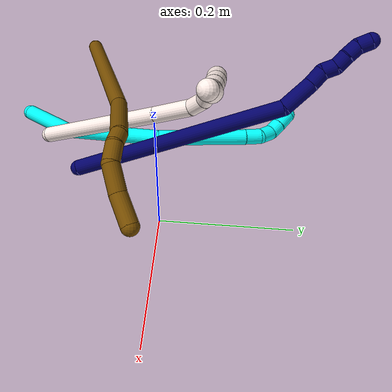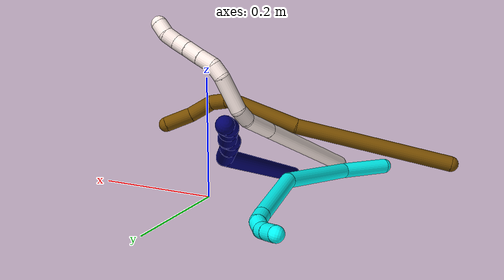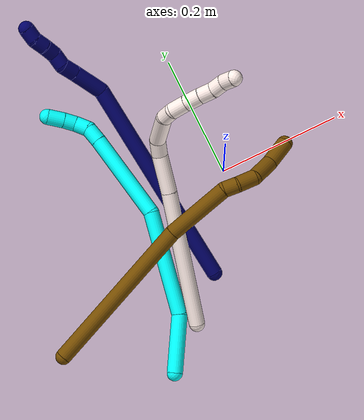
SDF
<sdf version="1.7">
 <world name="default">
  <model name="3">
   <static>0</static>
   <link name="3">
    <collision name="collision-cylinder-e_1_1_4">
     <pose>-0.004658 0.033006 0.032144 -0.798628 -0.10075 0.042545</pose>
     <geometry><cylinder><radius>0.0125</radius><length>0.092615</length></cylinder></geometry>
     <surface>
      <friction><ode><mu>1.16</mu><mu2>1.16</mu2><slip1>0</slip1><slip2>0</slip2></ode></friction>
      <contact><ode><kp>1e+06</kp><kd>1</kd><max_vel>0</max_vel><min_depth>0.001</min_depth></ode></contact>
     </surface>
    </collision>
    <visual name="visual-cylinder-e_1_1_4">
     <pose>-0.004658 0.033006 0.032144 -0.798628 -0.10075 0.042545</pose>
     <geometry><cylinder><radius>0.0125</radius><length>0.092615</length></cylinder></geometry>
     <material><ambient>0.003922 1 0.996078 1</ambient></material>
    </visual>
    <collision name="collision-cylinder-e_2_4_5">
     <pose>-0.034211 0.136971 0.100139 -1.10298 -0.30348 0.187582</pose>
     <geometry><cylinder><radius>0.0125</radius><length>0.166615</length></cylinder></geometry>
     <surface>
      <friction><ode><mu>1.16</mu><mu2>1.16</mu2><slip1>0</slip1><slip2>0</slip2></ode></friction>
      <contact><ode><kp>1e+06</kp><kd>1</kd><max_vel>0</max_vel><min_depth>0.001</min_depth></ode></contact>
     </surface>
    </collision>
    <visual name="visual-cylinder-e_2_4_5">
     <pose>-0.034211 0.136971 0.100139 -1.10298 -0.30348 0.187582</pose>
     <geometry><cylinder><radius>0.0125</radius><length>0.166615</length></cylinder></geometry>
     <material><ambient>0.003922 1 0.996078 1</ambient></material>
    </visual>
    <collision name="collision-cylinder-e_3_5_6">
     <pose>-0.074894 0.278238 0.14005 -1.5131 -0.220523 0.208245</pose>
     <geometry><cylinder><radius>0.0125</radius><length>0.144348</length></cylinder></geometry>
     <surface>
      <friction><ode><mu>1.16</mu><mu2>1.16</mu2><slip1>0</slip1><slip2>0</slip2></ode></friction>
      <contact><ode><kp>1e+06</kp><kd>1</kd><max_vel>0</max_vel><min_depth>0.001</min_depth></ode></contact>
     </surface>
    </collision>
    <visual name="visual-cylinder-e_3_5_6">
     <pose>-0.074894 0.278238 0.14005 -1.5131 -0.220523 0.208245</pose>
     <geometry><cylinder><radius>0.0125</radius><length>0.144348</length></cylinder></geometry>
     <material><ambient>0.003922 1 0.996078 1</ambient></material>
    </visual>
    <collision name="collision-cylinder-e_4_6_7">
     <pose>-0.093676 0.361264 0.144144 -1.56824 -0.231271 0.230686</pose>
     <geometry><cylinder><radius>0.0125</radius><length>0.026128</length></cylinder></geometry>
     <surface>
      <friction><ode><mu>1.16</mu><mu2>1.16</mu2><slip1>0</slip1><slip2>0</slip2></ode></friction>
      <contact><ode><kp>1e+06</kp><kd>1</kd><max_vel>0</max_vel><min_depth>0.001</min_depth></ode></contact>
     </surface>
    </collision>
    <visual name="visual-cylinder-e_4_6_7">
     <pose>-0.093676 0.361264 0.144144 -1.56824 -0.231271 0.230686</pose>
     <geometry><cylinder><radius>0.0125</radius><length>0.026128</length></cylinder></geometry>
     <material><ambient>0.003922 1 0.996078 1</ambient></material>
    </visual>
    <collision name="collision-cylinder-e_5_7_8">
     <pose>-0.099292 0.383948 0.138845 -2.0619 -0.227865 0.377378</pose>
     <geometry><cylinder><radius>0.0125</radius><length>0.02321</length></cylinder></geometry>
     <surface>
      <friction><ode><mu>1.16</mu><mu2>1.16</mu2><slip1>0</slip1><slip2>0</slip2></ode></friction>
      <contact><ode><kp>1e+06</kp><kd>1</kd><max_vel>0</max_vel><min_depth>0.001</min_depth></ode></contact>
     </surface>
    </collision>
    <visual name="visual-cylinder-e_5_7_8">
     <pose>-0.099292 0.383948 0.138845 -2.0619 -0.227865 0.377378</pose>
     <geometry><cylinder><radius>0.0125</radius><length>0.02321</length></cylinder></geometry>
     <material><ambient>0.003922 1 0.996078 1</ambient></material>
    </visual>
    <collision name="collision-cylinder-e_6_8_9">
     <pose>-0.107597 0.400576 0.128483 -2.21774 -0.597886 1.10858</pose>
     <geometry><cylinder><radius>0.0125</radius><length>0.020194</length></cylinder></geometry>
     <surface>
      <friction><ode><mu>1.16</mu><mu2>1.16</mu2><slip1>0</slip1><slip2>0</slip2></ode></friction>
      <contact><ode><kp>1e+06</kp><kd>1</kd><max_vel>0</max_vel><min_depth>0.001</min_depth></ode></contact>
     </surface>
    </collision>
    <visual name="visual-cylinder-e_6_8_9">
     <pose>-0.107597 0.400576 0.128483 -2.21774 -0.597886 1.10858</pose>
     <geometry><cylinder><radius>0.0125</radius><length>0.020194</length></cylinder></geometry>
     <material><ambient>0.003922 1 0.996078 1</ambient></material>
    </visual>
    <collision name="collision-cylinder-e_7_9_2">
     <pose>-0.12084 0.415477 0.11599 -2.30666 -0.597096 1.21316</pose>
     <geometry><cylinder><radius>0.0125</radius><length>0.026891</length></cylinder></geometry>
     <surface>
      <friction><ode><mu>1.16</mu><mu2>1.16</mu2><slip1>0</slip1><slip2>0</slip2></ode></friction>
      <contact><ode><kp>1e+06</kp><kd>1</kd><max_vel>0</max_vel><min_depth>0.001</min_depth></ode></contact>
     </surface>
    </collision>
    <visual name="visual-cylinder-e_7_9_2">
     <pose>-0.12084 0.415477 0.11599 -2.30666 -0.597096 1.21316</pose>
     <geometry><cylinder><radius>0.0125</radius><length>0.026891</length></cylinder></geometry>
     <material><ambient>0.003922 1 0.996078 1</ambient></material>
    </visual>
    <collision name="collision-sphere-2">
     <pose>-0.1284 0.423719 0.108527 0 -0 0</pose>
     <geometry><sphere><radius>0.0125</radius></sphere></geometry>
     <surface>
      <friction><ode><mu>1.16</mu><mu2>1.16</mu2><slip1>0</slip1><slip2>0</slip2></ode></friction>
      <contact><ode><kp>1e+06</kp><kd>1</kd><max_vel>0</max_vel><min_depth>0.001</min_depth></ode></contact>
     </surface>
    </collision>
    <visual name="visual-sphere-2">
     <pose>-0.1284 0.423719 0.108527 0 -0 0</pose>
     <geometry><sphere><radius>0.0125</radius></sphere></geometry>
     <material><ambient>0.003922 1 0.996078 1</ambient></material>
    </visual>
    <collision name="collision-sphere-9">
     <pose>-0.113281 0.407235 0.123453 0 -0 0</pose>
     <geometry><sphere><radius>0.0125</radius></sphere></geometry>
     <surface>
      <friction><ode><mu>1.16</mu><mu2>1.16</mu2><slip1>0</slip1><slip2>0</slip2></ode></friction>
      <contact><ode><kp>1e+06</kp><kd>1</kd><max_vel>0</max_vel><min_depth>0.001</min_depth></ode></contact>
     </surface>
    </collision>
    <visual name="visual-sphere-9">
     <pose>-0.113281 0.407235 0.123453 0 -0 0</pose>
     <geometry><sphere><radius>0.0125</radius></sphere></geometry>
     <material><ambient>0.003922 1 0.996078 1</ambient></material>
    </visual>
    <collision name="collision-sphere-4">
     <pose>-0.009315 0.066013 0.064289 0 -0 0</pose>
     <geometry><sphere><radius>0.0125</radius></sphere></geometry>
     <surface>
      <friction><ode><mu>1.16</mu><mu2>1.16</mu2><slip1>0</slip1><slip2>0</slip2></ode></friction>
      <contact><ode><kp>1e+06</kp><kd>1</kd><max_vel>0</max_vel><min_depth>0.001</min_depth></ode></contact>
     </surface>
    </collision>
    <visual name="visual-sphere-4">
     <pose>-0.009315 0.066013 0.064289 0 -0 0</pose>
     <geometry><sphere><radius>0.0125</radius></sphere></geometry>
     <material><ambient>0.003922 1 0.996078 1</ambient></material>
    </visual>
    <collision name="collision-sphere-1">
     <geometry><sphere><radius>0.0125</radius></sphere></geometry>
     <surface>
      <friction><ode><mu>1.16</mu><mu2>1.16</mu2><slip1>0</slip1><slip2>0</slip2></ode></friction>
      <contact><ode><kp>1e+06</kp><kd>1</kd><max_vel>0</max_vel><min_depth>0.001</min_depth></ode></contact>
     </surface>
    </collision>
    <visual name="visual-sphere-1">
     <geometry><sphere><radius>0.0125</radius></sphere></geometry>
     <material><ambient>0.003922 1 0.996078 1</ambient></material>
    </visual>
    <collision name="collision-sphere-8">
     <pose>-0.101914 0.393917 0.133514 0 -0 0</pose>
     <geometry><sphere><radius>0.0125</radius></sphere></geometry>
     <surface>
      <friction><ode><mu>1.16</mu><mu2>1.16</mu2><slip1>0</slip1><slip2>0</slip2></ode></friction>
      <contact><ode><kp>1e+06</kp><kd>1</kd><max_vel>0</max_vel><min_depth>0.001</min_depth></ode></contact>
     </surface>
    </collision>
    <visual name="visual-sphere-8">
     <pose>-0.101914 0.393917 0.133514 0 -0 0</pose>
     <geometry><sphere><radius>0.0125</radius></sphere></geometry>
     <material><ambient>0.003922 1 0.996078 1</ambient></material>
    </visual>
    <collision name="collision-sphere-5">
     <pose>-0.059107 0.207929 0.135989 0 -0 0</pose>
     <geometry><sphere><radius>0.0125</radius></sphere></geometry>
     <surface>
      <friction><ode><mu>1.16</mu><mu2>1.16</mu2><slip1>0</slip1><slip2>0</slip2></ode></friction>
      <contact><ode><kp>1e+06</kp><kd>1</kd><max_vel>0</max_vel><min_depth>0.001</min_depth></ode></contact>
     </surface>
    </collision>
    <visual name="visual-sphere-5">
     <pose>-0.059107 0.207929 0.135989 0 -0 0</pose>
     <geometry><sphere><radius>0.0125</radius></sphere></geometry>
     <material><ambient>0.003922 1 0.996078 1</ambient></material>
    </visual>
    <collision name="collision-sphere-6">
     <pose>-0.090682 0.348547 0.144111 0 -0 0</pose>
     <geometry><sphere><radius>0.0125</radius></sphere></geometry>
     <surface>
      <friction><ode><mu>1.16</mu><mu2>1.16</mu2><slip1>0</slip1><slip2>0</slip2></ode></friction>
      <contact><ode><kp>1e+06</kp><kd>1</kd><max_vel>0</max_vel><min_depth>0.001</min_depth></ode></contact>
     </surface>
    </collision>
    <visual name="visual-sphere-6">
     <pose>-0.090682 0.348547 0.144111 0 -0 0</pose>
     <geometry><sphere><radius>0.0125</radius></sphere></geometry>
     <material><ambient>0.003922 1 0.996078 1</ambient></material>
    </visual>
    <collision name="collision-sphere-7">
     <pose>-0.096671 0.37398 0.144176 0 -0 0</pose>
     <geometry><sphere><radius>0.0125</radius></sphere></geometry>
     <surface>
      <friction><ode><mu>1.16</mu><mu2>1.16</mu2><slip1>0</slip1><slip2>0</slip2></ode></friction>
      <contact><ode><kp>1e+06</kp><kd>1</kd><max_vel>0</max_vel><min_depth>0.001</min_depth></ode></contact>
     </surface>
    </collision>
    <visual name="visual-sphere-7">
     <pose>-0.096671 0.37398 0.144176 0 -0 0</pose>
     <geometry><sphere><radius>0.0125</radius></sphere></geometry>
     <material><ambient>0.003922 1 0.996078 1</ambient></material>
    </visual>
    <inertial>
     <pose>-0.054233 0.207307 0.10516 0 -0 0</pose>
     <mass>0.5</mass>
     <inertia>
      <ixx>0.000806</ixx>
      <ixy>0</ixy>
      <ixz>0</ixz>
      <iyy>0.00043</iyy>
      <iyz>0</iyz>
      <izz>-0.000448</izz>
     </inertia>
    </inertial>
   </link>
   <pose>-0.213638 -0.258263 0.012166 -0.832369 1.17523 -0.632008</pose>
  </model>
  <model name="7">
   <static>0</static>
   <link name="7">
    <collision name="collision-cylinder-e_1_1_4">
     <pose>-0.007282 0.086383 0.146651 -0.532318 -0.04276 0.011659</pose>
     <geometry><cylinder><radius>0.0125</radius><length>0.340714</length></cylinder></geometry>
     <surface>
      <friction><ode><mu>1.16</mu><mu2>1.16</mu2><slip1>0</slip1><slip2>0</slip2></ode></friction>
      <contact><ode><kp>1e+06</kp><kd>1</kd><max_vel>0</max_vel><min_depth>0.001</min_depth></ode></contact>
     </surface>
    </collision>
    <visual name="visual-cylinder-e_1_1_4">
     <pose>-0.007282 0.086383 0.146651 -0.532318 -0.04276 0.011659</pose>
     <geometry><cylinder><radius>0.0125</radius><length>0.340714</length></cylinder></geometry>
     <material><ambient>0.003922 0 0.403922 1</ambient></material>
    </visual>
    <collision name="collision-cylinder-e_2_4_5">
     <pose>-0.017531 0.174321 0.319357 -0.059646 -0.113184 0.00338</pose>
     <geometry><cylinder><radius>0.0125</radius><length>0.052537</length></cylinder></geometry>
     <surface>
      <friction><ode><mu>1.16</mu><mu2>1.16</mu2><slip1>0</slip1><slip2>0</slip2></ode></friction>
      <contact><ode><kp>1e+06</kp><kd>1</kd><max_vel>0</max_vel><min_depth>0.001</min_depth></ode></contact>
     </surface>
    </collision>
    <visual name="visual-cylinder-e_2_4_5">
     <pose>-0.017531 0.174321 0.319357 -0.059646 -0.113184 0.00338</pose>
     <geometry><cylinder><radius>0.0125</radius><length>0.052537</length></cylinder></geometry>
     <material><ambient>0.003922 0 0.403922 1</ambient></material>
    </visual>
    <collision name="collision-cylinder-e_3_5_6">
     <pose>-0.020565 0.175361 0.35772 0.041857 -0.005378 -0.000113</pose>
     <geometry><cylinder><radius>0.0125</radius><length>0.024641</length></cylinder></geometry>
     <surface>
      <friction><ode><mu>1.16</mu><mu2>1.16</mu2><slip1>0</slip1><slip2>0</slip2></ode></friction>
      <contact><ode><kp>1e+06</kp><kd>1</kd><max_vel>0</max_vel><min_depth>0.001</min_depth></ode></contact>
     </surface>
    </collision>
    <visual name="visual-cylinder-e_3_5_6">
     <pose>-0.020565 0.175361 0.35772 0.041857 -0.005378 -0.000113</pose>
     <geometry><cylinder><radius>0.0125</radius><length>0.024641</length></cylinder></geometry>
     <material><ambient>0.003922 0 0.403922 1</ambient></material>
    </visual>
    <collision name="collision-cylinder-e_4_6_7">
     <pose>-0.02136 0.179527 0.379237 -0.470393 -0.070497 0.0169</pose>
     <geometry><cylinder><radius>0.0125</radius><length>0.020709</length></cylinder></geometry>
     <surface>
      <friction><ode><mu>1.16</mu><mu2>1.16</mu2><slip1>0</slip1><slip2>0</slip2></ode></friction>
      <contact><ode><kp>1e+06</kp><kd>1</kd><max_vel>0</max_vel><min_depth>0.001</min_depth></ode></contact>
     </surface>
    </collision>
    <visual name="visual-cylinder-e_4_6_7">
     <pose>-0.02136 0.179527 0.379237 -0.470393 -0.070497 0.0169</pose>
     <geometry><cylinder><radius>0.0125</radius><length>0.020709</length></cylinder></geometry>
     <material><ambient>0.003922 0 0.403922 1</ambient></material>
    </visual>
    <collision name="collision-cylinder-e_5_7_8">
     <pose>-0.02123 0.18451 0.398814 -0.029043 0.082644 -0.001201</pose>
     <geometry><cylinder><radius>0.0125</radius><length>0.02082</length></cylinder></geometry>
     <surface>
      <friction><ode><mu>1.16</mu><mu2>1.16</mu2><slip1>0</slip1><slip2>0</slip2></ode></friction>
      <contact><ode><kp>1e+06</kp><kd>1</kd><max_vel>0</max_vel><min_depth>0.001</min_depth></ode></contact>
     </surface>
    </collision>
    <visual name="visual-cylinder-e_5_7_8">
     <pose>-0.02123 0.18451 0.398814 -0.029043 0.082644 -0.001201</pose>
     <geometry><cylinder><radius>0.0125</radius><length>0.02082</length></cylinder></geometry>
     <material><ambient>0.003922 0 0.403922 1</ambient></material>
    </visual>
    <collision name="collision-cylinder-e_6_8_9">
     <pose>-0.021096 0.185487 0.419401 -0.06599 -0.0707 0.002335</pose>
     <geometry><cylinder><radius>0.0125</radius><length>0.020529</length></cylinder></geometry>
     <surface>
      <friction><ode><mu>1.16</mu><mu2>1.16</mu2><slip1>0</slip1><slip2>0</slip2></ode></friction>
      <contact><ode><kp>1e+06</kp><kd>1</kd><max_vel>0</max_vel><min_depth>0.001</min_depth></ode></contact>
     </surface>
    </collision>
    <visual name="visual-cylinder-e_6_8_9">
     <pose>-0.021096 0.185487 0.419401 -0.06599 -0.0707 0.002335</pose>
     <geometry><cylinder><radius>0.0125</radius><length>0.020529</length></cylinder></geometry>
     <material><ambient>0.003922 0 0.403922 1</ambient></material>
    </visual>
    <collision name="collision-cylinder-e_7_9_2">
     <pose>-0.022375 0.190466 0.438654 -0.44457 -0.055327 0.012508</pose>
     <geometry><cylinder><radius>0.0125</radius><length>0.020048</length></cylinder></geometry>
     <surface>
      <friction><ode><mu>1.16</mu><mu2>1.16</mu2><slip1>0</slip1><slip2>0</slip2></ode></friction>
      <contact><ode><kp>1e+06</kp><kd>1</kd><max_vel>0</max_vel><min_depth>0.001</min_depth></ode></contact>
     </surface>
    </collision>
    <visual name="visual-cylinder-e_7_9_2">
     <pose>-0.022375 0.190466 0.438654 -0.44457 -0.055327 0.012508</pose>
     <geometry><cylinder><radius>0.0125</radius><length>0.020048</length></cylinder></geometry>
     <material><ambient>0.003922 0 0.403922 1</ambient></material>
    </visual>
    <collision name="collision-sphere-2">
     <pose>-0.02293 0.194771 0.44769 0 -0 0</pose>
     <geometry><sphere><radius>0.0125</radius></sphere></geometry>
     <surface>
      <friction><ode><mu>1.16</mu><mu2>1.16</mu2><slip1>0</slip1><slip2>0</slip2></ode></friction>
      <contact><ode><kp>1e+06</kp><kd>1</kd><max_vel>0</max_vel><min_depth>0.001</min_depth></ode></contact>
     </surface>
    </collision>
    <visual name="visual-sphere-2">
     <pose>-0.02293 0.194771 0.44769 0 -0 0</pose>
     <geometry><sphere><radius>0.0125</radius></sphere></geometry>
     <material><ambient>0.003922 0 0.403922 1</ambient></material>
    </visual>
    <collision name="collision-sphere-9">
     <pose>-0.021821 0.186162 0.429618 0 -0 0</pose>
     <geometry><sphere><radius>0.0125</radius></sphere></geometry>
     <surface>
      <friction><ode><mu>1.16</mu><mu2>1.16</mu2><slip1>0</slip1><slip2>0</slip2></ode></friction>
      <contact><ode><kp>1e+06</kp><kd>1</kd><max_vel>0</max_vel><min_depth>0.001</min_depth></ode></contact>
     </surface>
    </collision>
    <visual name="visual-sphere-9">
     <pose>-0.021821 0.186162 0.429618 0 -0 0</pose>
     <geometry><sphere><radius>0.0125</radius></sphere></geometry>
     <material><ambient>0.003922 0 0.403922 1</ambient></material>
    </visual>
    <collision name="collision-sphere-4">
     <pose>-0.014565 0.172765 0.293302 0 -0 0</pose>
     <geometry><sphere><radius>0.0125</radius></sphere></geometry>
     <surface>
      <friction><ode><mu>1.16</mu><mu2>1.16</mu2><slip1>0</slip1><slip2>0</slip2></ode></friction>
      <contact><ode><kp>1e+06</kp><kd>1</kd><max_vel>0</max_vel><min_depth>0.001</min_depth></ode></contact>
     </surface>
    </collision>
    <visual name="visual-sphere-4">
     <pose>-0.014565 0.172765 0.293302 0 -0 0</pose>
     <geometry><sphere><radius>0.0125</radius></sphere></geometry>
     <material><ambient>0.003922 0 0.403922 1</ambient></material>
    </visual>
    <collision name="collision-sphere-1">
     <geometry><sphere><radius>0.0125</radius></sphere></geometry>
     <surface>
      <friction><ode><mu>1.16</mu><mu2>1.16</mu2><slip1>0</slip1><slip2>0</slip2></ode></friction>
      <contact><ode><kp>1e+06</kp><kd>1</kd><max_vel>0</max_vel><min_depth>0.001</min_depth></ode></contact>
     </surface>
    </collision>
    <visual name="visual-sphere-1">
     <geometry><sphere><radius>0.0125</radius></sphere></geometry>
     <material><ambient>0.003922 0 0.403922 1</ambient></material>
    </visual>
    <collision name="collision-sphere-8">
     <pose>-0.020371 0.184811 0.409185 0 -0 0</pose>
     <geometry><sphere><radius>0.0125</radius></sphere></geometry>
     <surface>
      <friction><ode><mu>1.16</mu><mu2>1.16</mu2><slip1>0</slip1><slip2>0</slip2></ode></friction>
      <contact><ode><kp>1e+06</kp><kd>1</kd><max_vel>0</max_vel><min_depth>0.001</min_depth></ode></contact>
     </surface>
    </collision>
    <visual name="visual-sphere-8">
     <pose>-0.020371 0.184811 0.409185 0 -0 0</pose>
     <geometry><sphere><radius>0.0125</radius></sphere></geometry>
     <material><ambient>0.003922 0 0.403922 1</ambient></material>
    </visual>
    <collision name="collision-sphere-5">
     <pose>-0.020498 0.175877 0.345411 0 -0 0</pose>
     <geometry><sphere><radius>0.0125</radius></sphere></geometry>
     <surface>
      <friction><ode><mu>1.16</mu><mu2>1.16</mu2><slip1>0</slip1><slip2>0</slip2></ode></friction>
      <contact><ode><kp>1e+06</kp><kd>1</kd><max_vel>0</max_vel><min_depth>0.001</min_depth></ode></contact>
     </surface>
    </collision>
    <visual name="visual-sphere-5">
     <pose>-0.020498 0.175877 0.345411 0 -0 0</pose>
     <geometry><sphere><radius>0.0125</radius></sphere></geometry>
     <material><ambient>0.003922 0 0.403922 1</ambient></material>
    </visual>
    <collision name="collision-sphere-6">
     <pose>-0.020631 0.174846 0.37003 0 -0 0</pose>
     <geometry><sphere><radius>0.0125</radius></sphere></geometry>
     <surface>
      <friction><ode><mu>1.16</mu><mu2>1.16</mu2><slip1>0</slip1><slip2>0</slip2></ode></friction>
      <contact><ode><kp>1e+06</kp><kd>1</kd><max_vel>0</max_vel><min_depth>0.001</min_depth></ode></contact>
     </surface>
    </collision>
    <visual name="visual-sphere-6">
     <pose>-0.020631 0.174846 0.37003 0 -0 0</pose>
     <geometry><sphere><radius>0.0125</radius></sphere></geometry>
     <material><ambient>0.003922 0 0.403922 1</ambient></material>
    </visual>
    <collision name="collision-sphere-7">
     <pose>-0.02209 0.184209 0.388444 0 -0 0</pose>
     <geometry><sphere><radius>0.0125</radius></sphere></geometry>
     <surface>
      <friction><ode><mu>1.16</mu><mu2>1.16</mu2><slip1>0</slip1><slip2>0</slip2></ode></friction>
      <contact><ode><kp>1e+06</kp><kd>1</kd><max_vel>0</max_vel><min_depth>0.001</min_depth></ode></contact>
     </surface>
    </collision>
    <visual name="visual-sphere-7">
     <pose>-0.02209 0.184209 0.388444 0 -0 0</pose>
     <geometry><sphere><radius>0.0125</radius></sphere></geometry>
     <material><ambient>0.003922 0 0.403922 1</ambient></material>
    </visual>
    <inertial>
     <pose>-0.01135 0.116194 0.218241 0 -0 0</pose>
     <mass>0.5</mass>
     <inertia>
      <ixx>0.003365</ixx>
      <ixy>0</ixy>
      <ixz>0</ixz>
      <iyy>0.002928</iyy>
      <iyz>0</iyz>
      <izz>-0.001502</izz>
     </inertia>
    </inertial>
   </link>
   <pose>-0.087192 -0.142758 0.011489 -0.416897 -0.865392 -0.400296</pose>
  </model>
  <model name="11">
   <static>0</static>
   <link name="11">
    <collision name="collision-cylinder-e_1_1_4">
     <pose>0.022649 0.101732 -0.03415 -1.89466 0.208009 -0.288275</pose>
     <geometry><cylinder><radius>0.0125</radius><length>0.21935</length></cylinder></geometry>
     <surface>
      <friction><ode><mu>1.16</mu><mu2>1.16</mu2><slip1>0</slip1><slip2>0</slip2></ode></friction>
      <contact><ode><kp>1e+06</kp><kd>1</kd><max_vel>0</max_vel><min_depth>0.001</min_depth></ode></contact>
     </surface>
    </collision>
    <visual name="visual-cylinder-e_1_1_4">
     <pose>0.022649 0.101732 -0.03415 -1.89466 0.208009 -0.288275</pose>
     <geometry><cylinder><radius>0.0125</radius><length>0.21935</length></cylinder></geometry>
     <material><ambient>1 0.933333 0.909804 1</ambient></material>
    </visual>
    <collision name="collision-cylinder-e_2_4_5">
     <pose>0.050937 0.231785 -0.078639 -1.92085 0.184877 -0.26353</pose>
     <geometry><cylinder><radius>0.0125</radius><length>0.061345</length></cylinder></geometry>
     <surface>
      <friction><ode><mu>1.16</mu><mu2>1.16</mu2><slip1>0</slip1><slip2>0</slip2></ode></friction>
      <contact><ode><kp>1e+06</kp><kd>1</kd><max_vel>0</max_vel><min_depth>0.001</min_depth></ode></contact>
     </surface>
    </collision>
    <visual name="visual-cylinder-e_2_4_5">
     <pose>0.050937 0.231785 -0.078639 -1.92085 0.184877 -0.26353</pose>
     <geometry><cylinder><radius>0.0125</radius><length>0.061345</length></cylinder></geometry>
     <material><ambient>1 0.933333 0.909804 1</ambient></material>
    </visual>
    <collision name="collision-cylinder-e_3_5_6">
     <pose>0.056807 0.273463 -0.089703 -1.62496 0.01733 -0.018295</pose>
     <geometry><cylinder><radius>0.0125</radius><length>0.026756</length></cylinder></geometry>
     <surface>
      <friction><ode><mu>1.16</mu><mu2>1.16</mu2><slip1>0</slip1><slip2>0</slip2></ode></friction>
      <contact><ode><kp>1e+06</kp><kd>1</kd><max_vel>0</max_vel><min_depth>0.001</min_depth></ode></contact>
     </surface>
    </collision>
    <visual name="visual-cylinder-e_3_5_6">
     <pose>0.056807 0.273463 -0.089703 -1.62496 0.01733 -0.018295</pose>
     <geometry><cylinder><radius>0.0125</radius><length>0.026756</length></cylinder></geometry>
     <material><ambient>1 0.933333 0.909804 1</ambient></material>
    </visual>
    <collision name="collision-cylinder-e_4_6_7">
     <pose>0.054658 0.312978 -0.07914 -1.16343 -0.083376 0.054848</pose>
     <geometry><cylinder><radius>0.0125</radius><length>0.057178</length></cylinder></geometry>
     <surface>
      <friction><ode><mu>1.16</mu><mu2>1.16</mu2><slip1>0</slip1><slip2>0</slip2></ode></friction>
      <contact><ode><kp>1e+06</kp><kd>1</kd><max_vel>0</max_vel><min_depth>0.001</min_depth></ode></contact>
     </surface>
    </collision>
    <visual name="visual-cylinder-e_4_6_7">
     <pose>0.054658 0.312978 -0.07914 -1.16343 -0.083376 0.054848</pose>
     <geometry><cylinder><radius>0.0125</radius><length>0.057178</length></cylinder></geometry>
     <material><ambient>1 0.933333 0.909804 1</ambient></material>
    </visual>
    <collision name="collision-cylinder-e_5_7_8">
     <pose>0.053918 0.346717 -0.060923 -0.83025 0.1584 -0.069931</pose>
     <geometry><cylinder><radius>0.0125</radius><length>0.020802</length></cylinder></geometry>
     <surface>
      <friction><ode><mu>1.16</mu><mu2>1.16</mu2><slip1>0</slip1><slip2>0</slip2></ode></friction>
      <contact><ode><kp>1e+06</kp><kd>1</kd><max_vel>0</max_vel><min_depth>0.001</min_depth></ode></contact>
     </surface>
    </collision>
    <visual name="visual-cylinder-e_5_7_8">
     <pose>0.053918 0.346717 -0.060923 -0.83025 0.1584 -0.069931</pose>
     <geometry><cylinder><radius>0.0125</radius><length>0.020802</length></cylinder></geometry>
     <material><ambient>1 0.933333 0.909804 1</ambient></material>
    </visual>
    <collision name="collision-cylinder-e_6_8_9">
     <pose>0.062355 0.360745 -0.04516 -0.630505 0.556067 -0.185637</pose>
     <geometry><cylinder><radius>0.0125</radius><length>0.02575</length></cylinder></geometry>
     <surface>
      <friction><ode><mu>1.16</mu><mu2>1.16</mu2><slip1>0</slip1><slip2>0</slip2></ode></friction>
      <contact><ode><kp>1e+06</kp><kd>1</kd><max_vel>0</max_vel><min_depth>0.001</min_depth></ode></contact>
     </surface>
    </collision>
    <visual name="visual-cylinder-e_6_8_9">
     <pose>0.062355 0.360745 -0.04516 -0.630505 0.556067 -0.185637</pose>
     <geometry><cylinder><radius>0.0125</radius><length>0.02575</length></cylinder></geometry>
     <material><ambient>1 0.933333 0.909804 1</ambient></material>
    </visual>
    <collision name="collision-cylinder-e_7_9_10">
     <pose>0.075476 0.373179 -0.027171 -0.579051 0.524216 -0.1595</pose>
     <geometry><cylinder><radius>0.0125</radius><length>0.025275</length></cylinder></geometry>
     <surface>
      <friction><ode><mu>1.16</mu><mu2>1.16</mu2><slip1>0</slip1><slip2>0</slip2></ode></friction>
      <contact><ode><kp>1e+06</kp><kd>1</kd><max_vel>0</max_vel><min_depth>0.001</min_depth></ode></contact>
     </surface>
    </collision>
    <visual name="visual-cylinder-e_7_9_10">
     <pose>0.075476 0.373179 -0.027171 -0.579051 0.524216 -0.1595</pose>
     <geometry><cylinder><radius>0.0125</radius><length>0.025275</length></cylinder></geometry>
     <material><ambient>1 0.933333 0.909804 1</ambient></material>
    </visual>
    <collision name="collision-cylinder-e_8_10_11">
     <pose>0.087441 0.38385 -0.010009 -0.529424 0.546378 -0.151615</pose>
     <geometry><cylinder><radius>0.0125</radius><length>0.021709</length></cylinder></geometry>
     <surface>
      <friction><ode><mu>1.16</mu><mu2>1.16</mu2><slip1>0</slip1><slip2>0</slip2></ode></friction>
      <contact><ode><kp>1e+06</kp><kd>1</kd><max_vel>0</max_vel><min_depth>0.001</min_depth></ode></contact>
     </surface>
    </collision>
    <visual name="visual-cylinder-e_8_10_11">
     <pose>0.087441 0.38385 -0.010009 -0.529424 0.546378 -0.151615</pose>
     <geometry><cylinder><radius>0.0125</radius><length>0.021709</length></cylinder></geometry>
     <material><ambient>1 0.933333 0.909804 1</ambient></material>
    </visual>
    <collision name="collision-cylinder-e_9_11_12">
     <pose>0.097837 0.394925 0.004681 -0.762852 0.474919 -0.193531</pose>
     <geometry><cylinder><radius>0.0125</radius><length>0.0208</length></cylinder></geometry>
     <surface>
      <friction><ode><mu>1.16</mu><mu2>1.16</mu2><slip1>0</slip1><slip2>0</slip2></ode></friction>
      <contact><ode><kp>1e+06</kp><kd>1</kd><max_vel>0</max_vel><min_depth>0.001</min_depth></ode></contact>
     </surface>
    </collision>
    <visual name="visual-cylinder-e_9_11_12">
     <pose>0.097837 0.394925 0.004681 -0.762852 0.474919 -0.193531</pose>
     <geometry><cylinder><radius>0.0125</radius><length>0.0208</length></cylinder></geometry>
     <material><ambient>1 0.933333 0.909804 1</ambient></material>
    </visual>
    <collision name="collision-cylinder-e_10_12_2">
     <pose>0.104454 0.406945 0.020054 -0.575023 0.177926 -0.052741</pose>
     <geometry><cylinder><radius>0.0125</radius><length>0.021034</length></cylinder></geometry>
     <surface>
      <friction><ode><mu>1.16</mu><mu2>1.16</mu2><slip1>0</slip1><slip2>0</slip2></ode></friction>
      <contact><ode><kp>1e+06</kp><kd>1</kd><max_vel>0</max_vel><min_depth>0.001</min_depth></ode></contact>
     </surface>
    </collision>
    <visual name="visual-cylinder-e_10_12_2">
     <pose>0.104454 0.406945 0.020054 -0.575023 0.177926 -0.052741</pose>
     <geometry><cylinder><radius>0.0125</radius><length>0.021034</length></cylinder></geometry>
     <material><ambient>1 0.933333 0.909804 1</ambient></material>
    </visual>
    <collision name="collision-sphere-2">
     <pose>0.106315 0.412575 0.02874 0 -0 0</pose>
     <geometry><sphere><radius>0.0125</radius></sphere></geometry>
     <surface>
      <friction><ode><mu>1.16</mu><mu2>1.16</mu2><slip1>0</slip1><slip2>0</slip2></ode></friction>
      <contact><ode><kp>1e+06</kp><kd>1</kd><max_vel>0</max_vel><min_depth>0.001</min_depth></ode></contact>
     </surface>
    </collision>
    <visual name="visual-sphere-2">
     <pose>0.106315 0.412575 0.02874 0 -0 0</pose>
     <geometry><sphere><radius>0.0125</radius></sphere></geometry>
     <material><ambient>1 0.933333 0.909804 1</ambient></material>
    </visual>
    <collision name="collision-sphere-12">
     <pose>0.102593 0.401316 0.011367 0 -0 0</pose>
     <geometry><sphere><radius>0.0125</radius></sphere></geometry>
     <surface>
      <friction><ode><mu>1.16</mu><mu2>1.16</mu2><slip1>0</slip1><slip2>0</slip2></ode></friction>
      <contact><ode><kp>1e+06</kp><kd>1</kd><max_vel>0</max_vel><min_depth>0.001</min_depth></ode></contact>
     </surface>
    </collision>
    <visual name="visual-sphere-12">
     <pose>0.102593 0.401316 0.011367 0 -0 0</pose>
     <geometry><sphere><radius>0.0125</radius></sphere></geometry>
     <material><ambient>1 0.933333 0.909804 1</ambient></material>
    </visual>
    <collision name="collision-sphere-11">
     <pose>0.093081 0.388534 -0.002005 0 -0 0</pose>
     <geometry><sphere><radius>0.0125</radius></sphere></geometry>
     <surface>
      <friction><ode><mu>1.16</mu><mu2>1.16</mu2><slip1>0</slip1><slip2>0</slip2></ode></friction>
      <contact><ode><kp>1e+06</kp><kd>1</kd><max_vel>0</max_vel><min_depth>0.001</min_depth></ode></contact>
     </surface>
    </collision>
    <visual name="visual-sphere-11">
     <pose>0.093081 0.388534 -0.002005 0 -0 0</pose>
     <geometry><sphere><radius>0.0125</radius></sphere></geometry>
     <material><ambient>1 0.933333 0.909804 1</ambient></material>
    </visual>
    <collision name="collision-sphere-10">
     <pose>0.081802 0.379166 -0.018014 0 -0 0</pose>
     <geometry><sphere><radius>0.0125</radius></sphere></geometry>
     <surface>
      <friction><ode><mu>1.16</mu><mu2>1.16</mu2><slip1>0</slip1><slip2>0</slip2></ode></friction>
      <contact><ode><kp>1e+06</kp><kd>1</kd><max_vel>0</max_vel><min_depth>0.001</min_depth></ode></contact>
     </surface>
    </collision>
    <visual name="visual-sphere-10">
     <pose>0.081802 0.379166 -0.018014 0 -0 0</pose>
     <geometry><sphere><radius>0.0125</radius></sphere></geometry>
     <material><ambient>1 0.933333 0.909804 1</ambient></material>
    </visual>
    <collision name="collision-sphere-9">
     <pose>0.069151 0.367192 -0.036328 0 -0 0</pose>
     <geometry><sphere><radius>0.0125</radius></sphere></geometry>
     <surface>
      <friction><ode><mu>1.16</mu><mu2>1.16</mu2><slip1>0</slip1><slip2>0</slip2></ode></friction>
      <contact><ode><kp>1e+06</kp><kd>1</kd><max_vel>0</max_vel><min_depth>0.001</min_depth></ode></contact>
     </surface>
    </collision>
    <visual name="visual-sphere-9">
     <pose>0.069151 0.367192 -0.036328 0 -0 0</pose>
     <geometry><sphere><radius>0.0125</radius></sphere></geometry>
     <material><ambient>1 0.933333 0.909804 1</ambient></material>
    </visual>
    <collision name="collision-sphere-4">
     <pose>0.045299 0.203464 -0.068299 0 -0 0</pose>
     <geometry><sphere><radius>0.0125</radius></sphere></geometry>
     <surface>
      <friction><ode><mu>1.16</mu><mu2>1.16</mu2><slip1>0</slip1><slip2>0</slip2></ode></friction>
      <contact><ode><kp>1e+06</kp><kd>1</kd><max_vel>0</max_vel><min_depth>0.001</min_depth></ode></contact>
     </surface>
    </collision>
    <visual name="visual-sphere-4">
     <pose>0.045299 0.203464 -0.068299 0 -0 0</pose>
     <geometry><sphere><radius>0.0125</radius></sphere></geometry>
     <material><ambient>1 0.933333 0.909804 1</ambient></material>
    </visual>
    <collision name="collision-sphere-1">
     <geometry><sphere><radius>0.0125</radius></sphere></geometry>
     <surface>
      <friction><ode><mu>1.16</mu><mu2>1.16</mu2><slip1>0</slip1><slip2>0</slip2></ode></friction>
      <contact><ode><kp>1e+06</kp><kd>1</kd><max_vel>0</max_vel><min_depth>0.001</min_depth></ode></contact>
     </surface>
    </collision>
    <visual name="visual-sphere-1">
     <geometry><sphere><radius>0.0125</radius></sphere></geometry>
     <material><ambient>1 0.933333 0.909804 1</ambient></material>
    </visual>
    <collision name="collision-sphere-8">
     <pose>0.055558 0.354298 -0.053993 0 -0 0</pose>
     <geometry><sphere><radius>0.0125</radius></sphere></geometry>
     <surface>
      <friction><ode><mu>1.16</mu><mu2>1.16</mu2><slip1>0</slip1><slip2>0</slip2></ode></friction>
      <contact><ode><kp>1e+06</kp><kd>1</kd><max_vel>0</max_vel><min_depth>0.001</min_depth></ode></contact>
     </surface>
    </collision>
    <visual name="visual-sphere-8">
     <pose>0.055558 0.354298 -0.053993 0 -0 0</pose>
     <geometry><sphere><radius>0.0125</radius></sphere></geometry>
     <material><ambient>1 0.933333 0.909804 1</ambient></material>
    </visual>
    <collision name="collision-sphere-5">
     <pose>0.056575 0.260107 -0.088979 0 -0 0</pose>
     <geometry><sphere><radius>0.0125</radius></sphere></geometry>
     <surface>
      <friction><ode><mu>1.16</mu><mu2>1.16</mu2><slip1>0</slip1><slip2>0</slip2></ode></friction>
      <contact><ode><kp>1e+06</kp><kd>1</kd><max_vel>0</max_vel><min_depth>0.001</min_depth></ode></contact>
     </surface>
    </collision>
    <visual name="visual-sphere-5">
     <pose>0.056575 0.260107 -0.088979 0 -0 0</pose>
     <geometry><sphere><radius>0.0125</radius></sphere></geometry>
     <material><ambient>1 0.933333 0.909804 1</ambient></material>
    </visual>
    <collision name="collision-sphere-6">
     <pose>0.057039 0.28682 -0.090427 0 -0 0</pose>
     <geometry><sphere><radius>0.0125</radius></sphere></geometry>
     <surface>
      <friction><ode><mu>1.16</mu><mu2>1.16</mu2><slip1>0</slip1><slip2>0</slip2></ode></friction>
      <contact><ode><kp>1e+06</kp><kd>1</kd><max_vel>0</max_vel><min_depth>0.001</min_depth></ode></contact>
     </surface>
    </collision>
    <visual name="visual-sphere-6">
     <pose>0.057039 0.28682 -0.090427 0 -0 0</pose>
     <geometry><sphere><radius>0.0125</radius></sphere></geometry>
     <material><ambient>1 0.933333 0.909804 1</ambient></material>
    </visual>
    <collision name="collision-sphere-7">
     <pose>0.052277 0.339136 -0.067853 0 -0 0</pose>
     <geometry><sphere><radius>0.0125</radius></sphere></geometry>
     <surface>
      <friction><ode><mu>1.16</mu><mu2>1.16</mu2><slip1>0</slip1><slip2>0</slip2></ode></friction>
      <contact><ode><kp>1e+06</kp><kd>1</kd><max_vel>0</max_vel><min_depth>0.001</min_depth></ode></contact>
     </surface>
    </collision>
    <visual name="visual-sphere-7">
     <pose>0.052277 0.339136 -0.067853 0 -0 0</pose>
     <geometry><sphere><radius>0.0125</radius></sphere></geometry>
     <material><ambient>1 0.933333 0.909804 1</ambient></material>
    </visual>
    <inertial>
     <pose>0.047007 0.225574 -0.04411 0 -0 0</pose>
     <mass>0.5</mass>
     <inertia>
      <ixx>0.000639</ixx>
      <ixy>0</ixy>
      <ixz>0</ixz>
      <iyy>-0.000432</iyy>
      <iyz>0</iyz>
      <izz>-0.001057</izz>
     </inertia>
    </inertial>
   </link>
   <pose>-0.148593 -0.204819 0.022952 1.02882 0.513676 0.347644</pose>
  </model>
  <model name="12">
   <static>0</static>
   <link name="12">
    <collision name="collision-cylinder-e_1_1_4">
     <pose>0.121791 0.039483 0.009223 -1.34132 1.24942 -1.03919</pose>
     <geometry><cylinder><radius>0.0125</radius><length>0.256726</length></cylinder></geometry>
     <surface>
      <friction><ode><mu>1.16</mu><mu2>1.16</mu2><slip1>0</slip1><slip2>0</slip2></ode></friction>
      <contact><ode><kp>1e+06</kp><kd>1</kd><max_vel>0</max_vel><min_depth>0.001</min_depth></ode></contact>
     </surface>
    </collision>
    <visual name="visual-cylinder-e_1_1_4">
     <pose>0.121791 0.039483 0.009223 -1.34132 1.24942 -1.03919</pose>
     <geometry><cylinder><radius>0.0125</radius><length>0.256726</length></cylinder></geometry>
     <material><ambient>0.466667 0.301961 0 1</ambient></material>
    </visual>
    <collision name="collision-cylinder-e_2_4_5">
     <pose>0.290801 0.097276 0.031634 -0.946551 1.12502 -0.62457</pose>
     <geometry><cylinder><radius>0.0125</radius><length>0.104668</length></cylinder></geometry>
     <surface>
      <friction><ode><mu>1.16</mu><mu2>1.16</mu2><slip1>0</slip1><slip2>0</slip2></ode></friction>
      <contact><ode><kp>1e+06</kp><kd>1</kd><max_vel>0</max_vel><min_depth>0.001</min_depth></ode></contact>
     </surface>
    </collision>
    <visual name="visual-cylinder-e_2_4_5">
     <pose>0.290801 0.097276 0.031634 -0.946551 1.12502 -0.62457</pose>
     <geometry><cylinder><radius>0.0125</radius><length>0.104668</length></cylinder></geometry>
     <material><ambient>0.466667 0.301961 0 1</ambient></material>
    </visual>
    <collision name="collision-cylinder-e_3_5_6">
     <pose>0.347638 0.11583 0.049862 -0.048584 1.08763 -0.029379</pose>
     <geometry><cylinder><radius>0.0125</radius><length>0.02172</length></cylinder></geometry>
     <surface>
      <friction><ode><mu>1.16</mu><mu2>1.16</mu2><slip1>0</slip1><slip2>0</slip2></ode></friction>
      <contact><ode><kp>1e+06</kp><kd>1</kd><max_vel>0</max_vel><min_depth>0.001</min_depth></ode></contact>
     </surface>
    </collision>
    <visual name="visual-cylinder-e_3_5_6">
     <pose>0.347638 0.11583 0.049862 -0.048584 1.08763 -0.029379</pose>
     <geometry><cylinder><radius>0.0125</radius><length>0.02172</length></cylinder></geometry>
     <material><ambient>0.466667 0.301961 0 1</ambient></material>
    </visual>
    <collision name="collision-cylinder-e_4_6_7">
     <pose>0.37143 0.11282 0.059437 0.622527 1.19563 0.431328</pose>
     <geometry><cylinder><radius>0.0125</radius><length>0.030469</length></cylinder></geometry>
     <surface>
      <friction><ode><mu>1.16</mu><mu2>1.16</mu2><slip1>0</slip1><slip2>0</slip2></ode></friction>
      <contact><ode><kp>1e+06</kp><kd>1</kd><max_vel>0</max_vel><min_depth>0.001</min_depth></ode></contact>
     </surface>
    </collision>
    <visual name="visual-cylinder-e_4_6_7">
     <pose>0.37143 0.11282 0.059437 0.622527 1.19563 0.431328</pose>
     <geometry><cylinder><radius>0.0125</radius><length>0.030469</length></cylinder></geometry>
     <material><ambient>0.466667 0.301961 0 1</ambient></material>
    </visual>
    <collision name="collision-cylinder-e_5_7_8">
     <pose>0.404167 0.101204 0.060797 1.93375 1.12182 1.47727</pose>
     <geometry><cylinder><radius>0.0125</radius><length>0.041211</length></cylinder></geometry>
     <surface>
      <friction><ode><mu>1.16</mu><mu2>1.16</mu2><slip1>0</slip1><slip2>0</slip2></ode></friction>
      <contact><ode><kp>1e+06</kp><kd>1</kd><max_vel>0</max_vel><min_depth>0.001</min_depth></ode></contact>
     </surface>
    </collision>
    <visual name="visual-cylinder-e_5_7_8">
     <pose>0.404167 0.101204 0.060797 1.93375 1.12182 1.47727</pose>
     <geometry><cylinder><radius>0.0125</radius><length>0.041211</length></cylinder></geometry>
     <material><ambient>0.466667 0.301961 0 1</ambient></material>
    </visual>
    <collision name="collision-cylinder-e_6_8_2">
     <pose>0.44426 0.087717 0.053027 2.30158 1.26134 2.04372</pose>
     <geometry><cylinder><radius>0.0125</radius><length>0.045207</length></cylinder></geometry>
     <surface>
      <friction><ode><mu>1.16</mu><mu2>1.16</mu2><slip1>0</slip1><slip2>0</slip2></ode></friction>
      <contact><ode><kp>1e+06</kp><kd>1</kd><max_vel>0</max_vel><min_depth>0.001</min_depth></ode></contact>
     </surface>
    </collision>
    <visual name="visual-cylinder-e_6_8_2">
     <pose>0.44426 0.087717 0.053027 2.30158 1.26134 2.04372</pose>
     <geometry><cylinder><radius>0.0125</radius><length>0.045207</length></cylinder></geometry>
     <material><ambient>0.466667 0.301961 0 1</ambient></material>
    </visual>
    <collision name="collision-sphere-2">
     <pose>0.46579 0.082591 0.048432 0 -0 0</pose>
     <geometry><sphere><radius>0.0125</radius></sphere></geometry>
     <surface>
      <friction><ode><mu>1.16</mu><mu2>1.16</mu2><slip1>0</slip1><slip2>0</slip2></ode></friction>
      <contact><ode><kp>1e+06</kp><kd>1</kd><max_vel>0</max_vel><min_depth>0.001</min_depth></ode></contact>
     </surface>
    </collision>
    <visual name="visual-sphere-2">
     <pose>0.46579 0.082591 0.048432 0 -0 0</pose>
     <geometry><sphere><radius>0.0125</radius></sphere></geometry>
     <material><ambient>0.466667 0.301961 0 1</ambient></material>
    </visual>
    <collision name="collision-sphere-4">
     <pose>0.243582 0.078967 0.018446 0 -0 0</pose>
     <geometry><sphere><radius>0.0125</radius></sphere></geometry>
     <surface>
      <friction><ode><mu>1.16</mu><mu2>1.16</mu2><slip1>0</slip1><slip2>0</slip2></ode></friction>
      <contact><ode><kp>1e+06</kp><kd>1</kd><max_vel>0</max_vel><min_depth>0.001</min_depth></ode></contact>
     </surface>
    </collision>
    <visual name="visual-sphere-4">
     <pose>0.243582 0.078967 0.018446 0 -0 0</pose>
     <geometry><sphere><radius>0.0125</radius></sphere></geometry>
     <material><ambient>0.466667 0.301961 0 1</ambient></material>
    </visual>
    <collision name="collision-sphere-1">
     <geometry><sphere><radius>0.0125</radius></sphere></geometry>
     <surface>
      <friction><ode><mu>1.16</mu><mu2>1.16</mu2><slip1>0</slip1><slip2>0</slip2></ode></friction>
      <contact><ode><kp>1e+06</kp><kd>1</kd><max_vel>0</max_vel><min_depth>0.001</min_depth></ode></contact>
     </surface>
    </collision>
    <visual name="visual-sphere-1">
     <geometry><sphere><radius>0.0125</radius></sphere></geometry>
     <material><ambient>0.466667 0.301961 0 1</ambient></material>
    </visual>
    <collision name="collision-sphere-8">
     <pose>0.422731 0.092843 0.057621 0 -0 0</pose>
     <geometry><sphere><radius>0.0125</radius></sphere></geometry>
     <surface>
      <friction><ode><mu>1.16</mu><mu2>1.16</mu2><slip1>0</slip1><slip2>0</slip2></ode></friction>
      <contact><ode><kp>1e+06</kp><kd>1</kd><max_vel>0</max_vel><min_depth>0.001</min_depth></ode></contact>
     </surface>
    </collision>
    <visual name="visual-sphere-8">
     <pose>0.422731 0.092843 0.057621 0 -0 0</pose>
     <geometry><sphere><radius>0.0125</radius></sphere></geometry>
     <material><ambient>0.466667 0.301961 0 1</ambient></material>
    </visual>
    <collision name="collision-sphere-5">
     <pose>0.338021 0.115585 0.044823 0 -0 0</pose>
     <geometry><sphere><radius>0.0125</radius></sphere></geometry>
     <surface>
      <friction><ode><mu>1.16</mu><mu2>1.16</mu2><slip1>0</slip1><slip2>0</slip2></ode></friction>
      <contact><ode><kp>1e+06</kp><kd>1</kd><max_vel>0</max_vel><min_depth>0.001</min_depth></ode></contact>
     </surface>
    </collision>
    <visual name="visual-sphere-5">
     <pose>0.338021 0.115585 0.044823 0 -0 0</pose>
     <geometry><sphere><radius>0.0125</radius></sphere></geometry>
     <material><ambient>0.466667 0.301961 0 1</ambient></material>
    </visual>
    <collision name="collision-sphere-6">
     <pose>0.357255 0.116075 0.054902 0 -0 0</pose>
     <geometry><sphere><radius>0.0125</radius></sphere></geometry>
     <surface>
      <friction><ode><mu>1.16</mu><mu2>1.16</mu2><slip1>0</slip1><slip2>0</slip2></ode></friction>
      <contact><ode><kp>1e+06</kp><kd>1</kd><max_vel>0</max_vel><min_depth>0.001</min_depth></ode></contact>
     </surface>
    </collision>
    <visual name="visual-sphere-6">
     <pose>0.357255 0.116075 0.054902 0 -0 0</pose>
     <geometry><sphere><radius>0.0125</radius></sphere></geometry>
     <material><ambient>0.466667 0.301961 0 1</ambient></material>
    </visual>
    <collision name="collision-sphere-7">
     <pose>0.385604 0.109565 0.063972 0 -0 0</pose>
     <geometry><sphere><radius>0.0125</radius></sphere></geometry>
     <surface>
      <friction><ode><mu>1.16</mu><mu2>1.16</mu2><slip1>0</slip1><slip2>0</slip2></ode></friction>
      <contact><ode><kp>1e+06</kp><kd>1</kd><max_vel>0</max_vel><min_depth>0.001</min_depth></ode></contact>
     </surface>
    </collision>
    <visual name="visual-sphere-7">
     <pose>0.385604 0.109565 0.063972 0 -0 0</pose>
     <geometry><sphere><radius>0.0125</radius></sphere></geometry>
     <material><ambient>0.466667 0.301961 0 1</ambient></material>
    </visual>
    <inertial>
     <pose>0.234624 0.068815 0.026951 0 -0 0</pose>
     <mass>0.5</mass>
     <inertia>
      <ixx>-0.000106</ixx>
      <ixy>0</ixy>
      <ixz>0</ixz>
      <iyy>0.001006</iyy>
      <iyz>0</iyz>
      <izz>-0.00192</izz>
     </inertia>
    </inertial>
   </link>
   <pose>-0.358517 -0.163862 0.059647 1.28713 0.094185 0.353192</pose>
  </model>
 </world>
</sdf>
